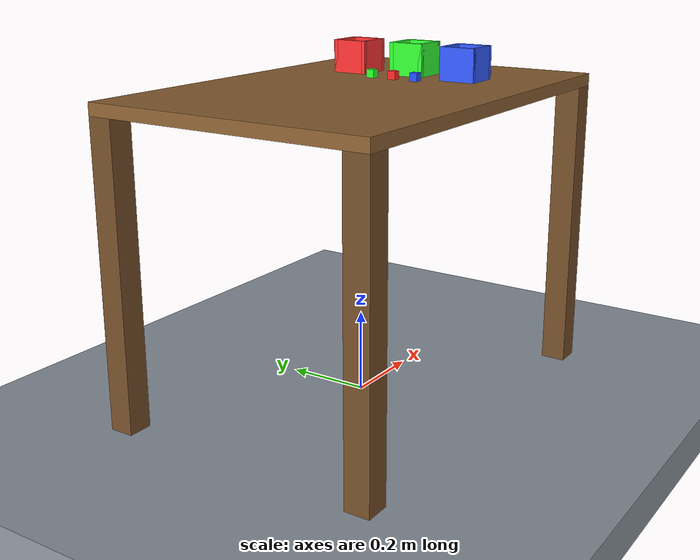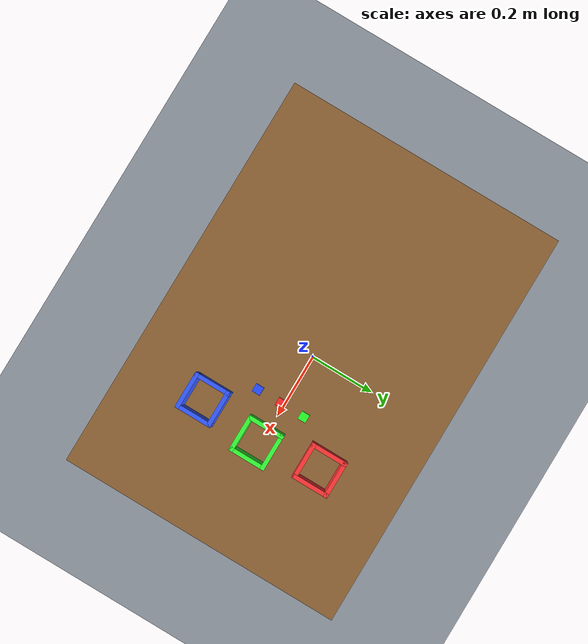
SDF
<sdf version="1.10"><world name="arm_world"><physics type="dart"><max_step_size>0.001</max_step_size><real_time_factor>1.0</real_time_factor></physics><scene><ambient>0.45 0.45 0.45 1</ambient><background>0.72 0.75 0.8 1</background><shadows>true</shadows></scene><light type="directional" name="sun"><pose>0 0 3 0 0 0</pose><diffuse>1 1 1 1</diffuse><specular>0.5 0.5 0.5 1</specular><direction>-0.5 -0.7 -1</direction></light><light type="point" name="table_light"><pose>0 0 2.2 0 0 0</pose><diffuse>1 1 1 1</diffuse></light><model name="floor"><static>true</static><pose>0 0 -0.05 0 0 0</pose><link name="link"><collision name="collision"><geometry><box><size>10 10 0.1</size></box></geometry><surface><friction><mu>0.6</mu></friction></surface></collision><visual name="visual"><geometry><box><size>10 10 0.1</size></box></geometry><material><ambient>0.55 0.58 0.62 1</ambient><diffuse>0.55 0.58 0.62 1</diffuse></material></visual></link></model><model name="table"><static>true</static><pose>0 0 0 0 0 0</pose><link name="top"><pose>0 0 0.735 0 0 0</pose><collision name="collision"><geometry><box><size>1.0 0.7 0.03</size></box></geometry><surface><friction><mu>0.6</mu></friction></surface></collision><visual name="visual"><geometry><box><size>1.0 0.7 0.03</size></box></geometry><material><ambient>0.55 0.38 0.2 1</ambient><diffuse>0.55 0.38 0.2 1</diffuse></material></visual></link><link name="leg_0"><pose>-0.47 -0.31999999999999995 0.36 0 0 0</pose><collision name="collision"><geometry><box><size>0.06 0.06 0.72</size></box></geometry><surface><friction><mu>0.6</mu></friction></surface></collision><visual name="visual"><geometry><box><size>0.06 0.06 0.72</size></box></geometry><material><ambient>0.45 0.3 0.16 1</ambient><diffuse>0.45 0.3 0.16 1</diffuse></material></visual></link><link name="leg_1"><pose>0.47 -0.31999999999999995 0.36 0 0 0</pose><collision name="collision"><geometry><box><size>0.06 0.06 0.72</size></box></geometry><surface><friction><mu>0.6</mu></friction></surface></collision><visual name="visual"><geometry><box><size>0.06 0.06 0.72</size></box></geometry><material><ambient>0.45 0.3 0.16 1</ambient><diffuse>0.45 0.3 0.16 1</diffuse></material></visual></link><link name="leg_2"><pose>-0.47 0.31999999999999995 0.36 0 0 0</pose><collision name="collision"><geometry><box><size>0.06 0.06 0.72</size></box></geometry><surface><friction><mu>0.6</mu></friction></surface></collision><visual name="visual"><geometry><box><size>0.06 0.06 0.72</size></box></geometry><material><ambient>0.45 0.3 0.16 1</ambient><diffuse>0.45 0.3 0.16 1</diffuse></material></visual></link><link name="leg_3"><pose>0.47 0.31999999999999995 0.36 0 0 0</pose><collision name="collision"><geometry><box><size>0.06 0.06 0.72</size></box></geometry><surface><friction><mu>0.6</mu></friction></surface></collision><visual name="visual"><geometry><box><size>0.06 0.06 0.72</size></box></geometry><material><ambient>0.45 0.3 0.16 1</ambient><diffuse>0.45 0.3 0.16 1</diffuse></material></visual></link></model><model name="block_red"><pose>0.14 0.0 0.76 0 0 0.0</pose><link name="link"><inertial><mass>0.05</mass><inertia><ixx>3.333333e-06</ixx><ixy>0.000000e+00</ixy><ixz>0.000000e+00</ixz><iyy>3.333333e-06</iyy><iyz>0.000000e+00</iyz><izz>3.333333e-06</izz></inertia></inertial><collision name="collision"><geometry><box><size>0.02 0.02 0.02</size></box></geometry><surface><friction><mu>0.6</mu></friction></surface></collision><visual name="visual"><geometry><box><size>0.02 0.02 0.02</size></box></geometry><material><ambient>1.0 0.15 0.15</ambient><diffuse>1.0 0.15 0.15</diffuse></material></visual></link></model><model name="block_green"><pose>0.14 0.06 0.76 0 0 0.0</pose><link name="link"><inertial><mass>0.05</mass><inertia><ixx>3.333333e-06</ixx><ixy>0.000000e+00</ixy><ixz>0.000000e+00</ixz><iyy>3.333333e-06</iyy><iyz>0.000000e+00</iyz><izz>3.333333e-06</izz></inertia></inertial><collision name="collision"><geometry><box><size>0.02 0.02 0.02</size></box></geometry><surface><friction><mu>0.6</mu></friction></surface></collision><visual name="visual"><geometry><box><size>0.02 0.02 0.02</size></box></geometry><material><ambient>0.15 1.0 0.15</ambient><diffuse>0.15 1.0 0.15</diffuse></material></visual></link></model><model name="block_blue"><pose>0.14 -0.06 0.76 0 0 0.0</pose><link name="link"><inertial><mass>0.05</mass><inertia><ixx>3.333333e-06</ixx><ixy>0.000000e+00</ixy><ixz>0.000000e+00</ixz><iyy>3.333333e-06</iyy><iyz>0.000000e+00</iyz><izz>3.333333e-06</izz></inertia></inertial><collision name="collision"><geometry><box><size>0.02 0.02 0.02</size></box></geometry><surface><friction><mu>0.6</mu></friction></surface></collision><visual name="visual"><geometry><box><size>0.02 0.02 0.02</size></box></geometry><material><ambient>0.15 0.3 1.0</ambient><diffuse>0.15 0.3 1.0</diffuse></material></visual></link></model><model name="bucket_red"><static>true</static><pose>0.22 0.15 0.75 0 0 0</pose><link name="wall_n"><pose>0.0 0.04 0.04 0 0 0</pose><collision name="collision"><geometry><box><size>0.09 0.01 0.08</size></box></geometry><surface><friction><mu>0.6</mu></friction></surface></collision><visual name="visual"><geometry><box><size>0.09 0.01 0.08</size></box></geometry><material><ambient>1.0 0.2 0.2 1</ambient><diffuse>1.0 0.2 0.2 1</diffuse></material></visual></link><link name="wall_s"><pose>0.0 -0.04 0.04 0 0 0</pose><collision name="collision"><geometry><box><size>0.09 0.01 0.08</size></box></geometry><surface><friction><mu>0.6</mu></friction></surface></collision><visual name="visual"><geometry><box><size>0.09 0.01 0.08</size></box></geometry><material><ambient>1.0 0.2 0.2 1</ambient><diffuse>1.0 0.2 0.2 1</diffuse></material></visual></link><link name="wall_e"><pose>0.04 0.0 0.04 0 0 0</pose><collision name="collision"><geometry><box><size>0.01 0.09 0.08</size></box></geometry><surface><friction><mu>0.6</mu></friction></surface></collision><visual name="visual"><geometry><box><size>0.01 0.09 0.08</size></box></geometry><material><ambient>1.0 0.2 0.2 1</ambient><diffuse>1.0 0.2 0.2 1</diffuse></material></visual></link><link name="wall_w"><pose>-0.04 0.0 0.04 0 0 0</pose><collision name="collision"><geometry><box><size>0.01 0.09 0.08</size></box></geometry><surface><friction><mu>0.6</mu></friction></surface></collision><visual name="visual"><geometry><box><size>0.01 0.09 0.08</size></box></geometry><material><ambient>1.0 0.2 0.2 1</ambient><diffuse>1.0 0.2 0.2 1</diffuse></material></visual></link></model><model name="bucket_green"><static>true</static><pose>0.24 0.0 0.75 0 0 0</pose><link name="wall_n"><pose>0.0 0.04 0.04 0 0 0</pose><collision name="collision"><geometry><box><size>0.09 0.01 0.08</size></box></geometry><surface><friction><mu>0.6</mu></friction></surface></collision><visual name="visual"><geometry><box><size>0.09 0.01 0.08</size></box></geometry><material><ambient>0.2 1.0 0.2 1</ambient><diffuse>0.2 1.0 0.2 1</diffuse></material></visual></link><link name="wall_s"><pose>0.0 -0.04 0.04 0 0 0</pose><collision name="collision"><geometry><box><size>0.09 0.01 0.08</size></box></geometry><surface><friction><mu>0.6</mu></friction></surface></collision><visual name="visual"><geometry><box><size>0.09 0.01 0.08</size></box></geometry><material><ambient>0.2 1.0 0.2 1</ambient><diffuse>0.2 1.0 0.2 1</diffuse></material></visual></link><link name="wall_e"><pose>0.04 0.0 0.04 0 0 0</pose><collision name="collision"><geometry><box><size>0.01 0.09 0.08</size></box></geometry><surface><friction><mu>0.6</mu></friction></surface></collision><visual name="visual"><geometry><box><size>0.01 0.09 0.08</size></box></geometry><material><ambient>0.2 1.0 0.2 1</ambient><diffuse>0.2 1.0 0.2 1</diffuse></material></visual></link><link name="wall_w"><pose>-0.04 0.0 0.04 0 0 0</pose><collision name="collision"><geometry><box><size>0.01 0.09 0.08</size></box></geometry><surface><friction><mu>0.6</mu></friction></surface></collision><visual name="visual"><geometry><box><size>0.01 0.09 0.08</size></box></geometry><material><ambient>0.2 1.0 0.2 1</ambient><diffuse>0.2 1.0 0.2 1</diffuse></material></visual></link></model><model name="bucket_blue"><static>true</static><pose>0.22 -0.15 0.75 0 0 0</pose><link name="wall_n"><pose>0.0 0.04 0.04 0 0 0</pose><collision name="collision"><geometry><box><size>0.09 0.01 0.08</size></box></geometry><surface><friction><mu>0.6</mu></friction></surface></collision><visual name="visual"><geometry><box><size>0.09 0.01 0.08</size></box></geometry><material><ambient>0.2 0.35 1.0 1</ambient><diffuse>0.2 0.35 1.0 1</diffuse></material></visual></link><link name="wall_s"><pose>0.0 -0.04 0.04 0 0 0</pose><collision name="collision"><geometry><box><size>0.09 0.01 0.08</size></box></geometry><surface><friction><mu>0.6</mu></friction></surface></collision><visual name="visual"><geometry><box><size>0.09 0.01 0.08</size></box></geometry><material><ambient>0.2 0.35 1.0 1</ambient><diffuse>0.2 0.35 1.0 1</diffuse></material></visual></link><link name="wall_e"><pose>0.04 0.0 0.04 0 0 0</pose><collision name="collision"><geometry><box><size>0.01 0.09 0.08</size></box></geometry><surface><friction><mu>0.6</mu></friction></surface></collision><visual name="visual"><geometry><box><size>0.01 0.09 0.08</size></box></geometry><material><ambient>0.2 0.35 1.0 1</ambient><diffuse>0.2 0.35 1.0 1</diffuse></material></visual></link><link name="wall_w"><pose>-0.04 0.0 0.04 0 0 0</pose><collision name="collision"><geometry><box><size>0.01 0.09 0.08</size></box></geometry><surface><friction><mu>0.6</mu></friction></surface></collision><visual name="visual"><geometry><box><size>0.01 0.09 0.08</size></box></geometry><material><ambient>0.2 0.35 1.0 1</ambient><diffuse>0.2 0.35 1.0 1</diffuse></material></visual></link></model><gui><plugin filename="MinimalScene" name="3D View"><gz-gui><property type="bool" key="showTitleBar">false</property><property type="string" key="state">docked</property></gz-gui><engine>ogre2</engine><scene>scene</scene><ambient_light>0.4 0.4 0.4</ambient_light><background_color>0.8 0.8 0.8</background_color><camera_pose>-1.2 0.4 1.4 0 0.5 0</camera_pose></plugin><plugin filename="GzSceneManager" name="Scene Manager"><gz-gui><property type="bool" key="resizable">false</property><property type="double" key="width">5</property><property type="double" key="height">5</property><property type="string" key="state">floating</property><property type="bool" key="showTitleBar">false</property></gz-gui></plugin><plugin filename="InteractiveViewControl" name="Interactive view control"><gz-gui><property type="bool" key="resizable">false</property><property type="double" key="width">5</property><property type="double" key="height">5</property><property type="string" key="state">floating</property><property type="bool" key="showTitleBar">false</property></gz-gui></plugin><plugin filename="EntityContextMenuPlugin" name="Entity context menu"><gz-gui><property type="bool" key="resizable">false</property><property type="double" key="width">5</property><property type="double" key="height">5</property><property type="string" key="state">floating</property><property type="bool" key="showTitleBar">false</property></gz-gui></plugin><plugin filename="SelectEntities" name="Select Entities"><gz-gui><property type="bool" key="resizable">false</property><property type="double" key="width">5</property><property type="double" key="height">5</property><property type="string" key="state">floating</property><property type="bool" key="showTitleBar">false</property></gz-gui></plugin><plugin filename="ImageDisplay" name="Camera feed"><gz-gui><property type="string" key="title">Camera feed</property><property type="string" key="state">floating</property><property type="double" key="x">80</property><property type="double" key="y">60</property><property type="double" key="width">640</property><property type="double" key="height">480</property></gz-gui><topic>/camera_table/detected</topic></plugin></gui></world></sdf>
